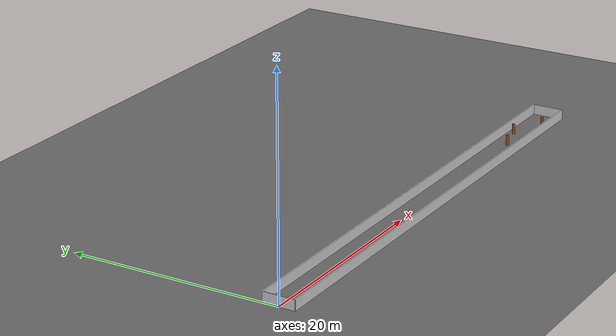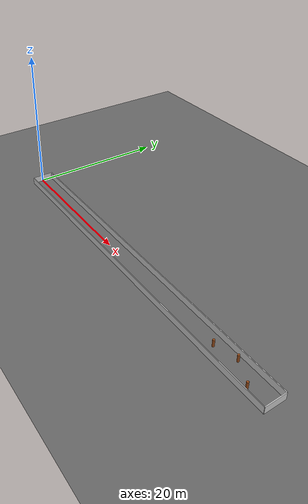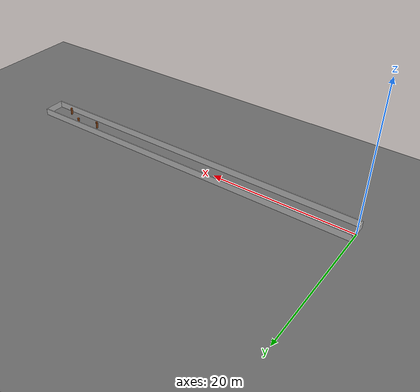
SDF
<sdf version="1.8">
 <world name="degenerate_corridor">
  <plugin filename="gz-sim-physics-system" name="gz::sim::systems::Physics"/>
  <plugin filename="gz-sim-user-commands-system" name="gz::sim::systems::UserCommands"/>
  <plugin filename="gz-sim-scene-broadcaster-system" name="gz::sim::systems::SceneBroadcaster"/>
  <plugin filename="gz-sim-sensors-system" name="gz::sim::systems::Sensors">
   <render_engine>ogre2</render_engine>
  </plugin>
  <plugin filename="gz-sim-contact-system" name="gz::sim::systems::Contact"/>
  <light name="sun" type="directional">
   <pose>0 0 10 0 0 0</pose>
   <diffuse>0.8 0.8 0.8 1</diffuse>
   <specular>0.2 0.2 0.2 1</specular>
   <direction>-0.5 0.1 -0.9</direction>
  </light>
  <model name="ground">
   <static>true</static>
   <link name="link">
    <collision name="col"><geometry><plane><normal>0 0 1</normal><size>60 10</size></plane></geometry></collision>
    <visual name="vis">
     <geometry><plane><normal>0 0 1</normal><size>60 10</size></plane></geometry>
     <material><ambient>0.4 0.4 0.4 1</ambient></material>
    </visual>
   </link>
  </model>
  <model name="wall_north">
   <static>true</static>
   <pose>25 1.5 0.5 0 0 0</pose>
   <link name="link">
    <collision name="col"><geometry><box><size>50 0.1 1.0</size></box></geometry></collision>
    <visual name="vis">
     <geometry><box><size>50 0.1 1.0</size></box></geometry>
     <material><ambient>0.85 0.85 0.85 1</ambient></material>
    </visual>
   </link>
  </model>
  <model name="wall_south">
   <static>true</static>
   <pose>25 -1.5 0.5 0 0 0</pose>
   <link name="link">
    <collision name="col"><geometry><box><size>50 0.1 1.0</size></box></geometry></collision>
    <visual name="vis">
     <geometry><box><size>50 0.1 1.0</size></box></geometry>
     <material><ambient>0.85 0.85 0.85 1</ambient></material>
    </visual>
   </link>
  </model>
  <model name="wall_entrance">
   <static>true</static>
   <pose>0 0 0.5 0 0 0</pose>
   <link name="link">
    <collision name="col"><geometry><box><size>0.1 3.0 1.0</size></box></geometry></collision>
    <visual name="vis">
     <geometry><box><size>0.1 3.0 1.0</size></box></geometry>
     <material><ambient>0.85 0.85 0.85 1</ambient></material>
    </visual>
   </link>
  </model>
  <model name="wall_exit">
   <static>true</static>
   <pose>50 0 0.5 0 0 0</pose>
   <link name="link">
    <collision name="col"><geometry><box><size>0.1 3.0 1.0</size></box></geometry></collision>
    <visual name="vis">
     <geometry><box><size>0.1 3.0 1.0</size></box></geometry>
     <material><ambient>0.85 0.85 0.85 1</ambient></material>
    </visual>
   </link>
  </model>
  <model name="pillar_1">
   <static>true</static>
   <pose>41 0 0.5 0 0 0</pose>
   <link name="link">
    <collision name="col">
     <geometry><cylinder><radius>0.15</radius><length>1.0</length></cylinder></geometry>
    </collision>
    <visual name="vis">
     <geometry><cylinder><radius>0.15</radius><length>1.0</length></cylinder></geometry>
     <material><ambient>0.6 0.3 0.1 1</ambient></material>
    </visual>
   </link>
  </model>
  <model name="pillar_2">
   <static>true</static>
   <pose>44 0.8 0.5 0 0 0</pose>
   <link name="link">
    <collision name="col">
     <geometry><cylinder><radius>0.15</radius><length>1.0</length></cylinder></geometry>
    </collision>
    <visual name="vis">
     <geometry><cylinder><radius>0.15</radius><length>1.0</length></cylinder></geometry>
     <material><ambient>0.6 0.3 0.1 1</ambient></material>
    </visual>
   </link>
  </model>
  <model name="pillar_3">
   <static>true</static>
   <pose>47 -0.8 0.5 0 0 0</pose>
   <link name="link">
    <collision name="col">
     <geometry><cylinder><radius>0.15</radius><length>1.0</length></cylinder></geometry>
    </collision>
    <visual name="vis">
     <geometry><cylinder><radius>0.15</radius><length>1.0</length></cylinder></geometry>
     <material><ambient>0.6 0.3 0.1 1</ambient></material>
    </visual>
   </link>
  </model>
 </world>
</sdf>
